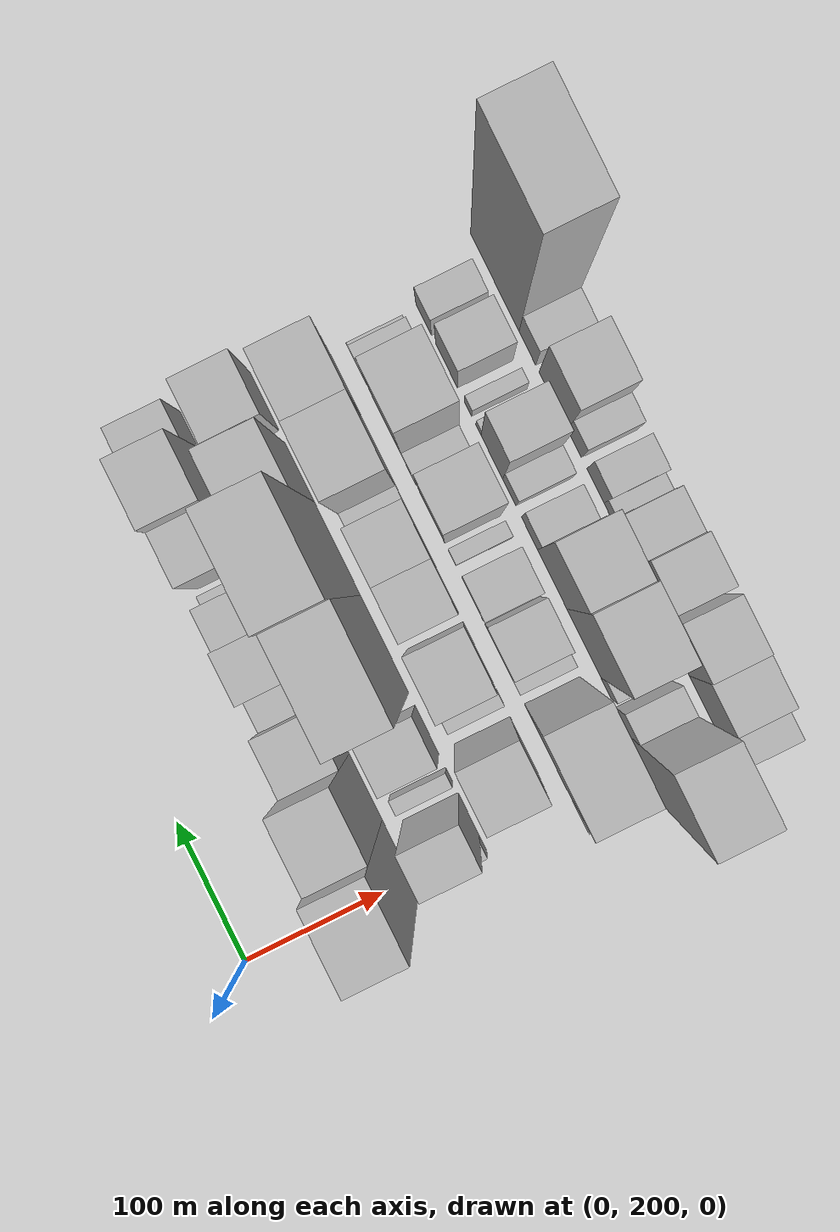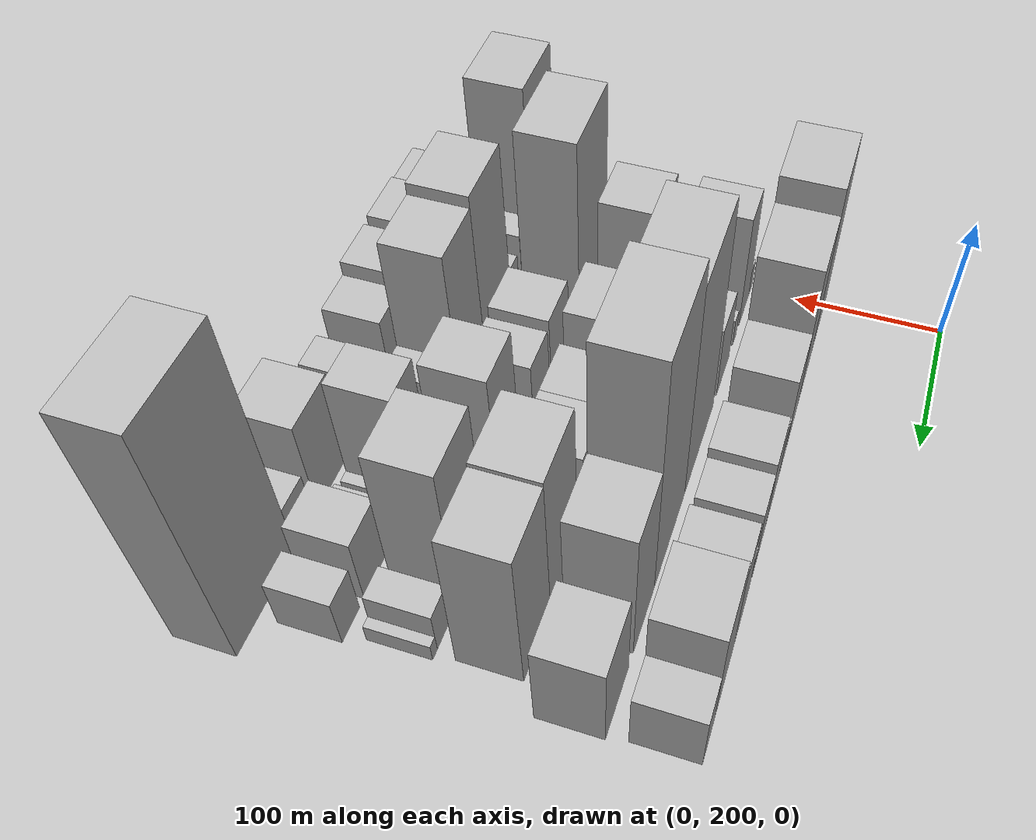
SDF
<sdf version="1.6">
 <world name="default">
  <model name="building_35">
   <static>1</static>
   <pose>100.0000 215.8746 0 0.000000 0.000000 0.000000</pose>
   <link name="link">
    <pose>0 0 72.00 0 0 0</pose>
    <collision name="collision"><geometry><box><size>40.0000 53.1204 144.0000</size></box></geometry></collision>
    <visual name="visual">
     <cast_shadows>0</cast_shadows>
     <geometry><box><size>40.0000 53.1204 144.0000</size></box></geometry>
     <material>
      <script>
       <uri>model://HANNAS_wall/materials/scripts</uri>
       <uri>model://HANNAS_wall/materials/textures</uri>
       <name>vrc/HANNAS_wall</name>
      </script>
     </material>
    </visual>
   </link>
  </model>
  <model name="building_36">
   <static>1</static>
   <pose>100.0000 266.4182 0 0.000000 0.000000 0.000000</pose>
   <link name="link">
    <pose>0 0 61.50 0 0 0</pose>
    <collision name="collision"><geometry><box><size>40.0000 47.9667 123.0000</size></box></geometry></collision>
    <visual name="visual">
     <cast_shadows>0</cast_shadows>
     <geometry><box><size>40.0000 47.9667 123.0000</size></box></geometry>
     <material>
      <script>
       <uri>model://HANNAS_wall/materials/scripts</uri>
       <uri>model://HANNAS_wall/materials/textures</uri>
       <name>vrc/HANNAS_wall</name>
      </script>
     </material>
    </visual>
   </link>
  </model>
  <model name="building_37">
   <static>1</static>
   <pose>100.0000 310.0759 0 0.000000 0.000000 0.000000</pose>
   <link name="link">
    <pose>0 0 34.50 0 0 0</pose>
    <collision name="collision"><geometry><box><size>40.0000 39.3489 69.0000</size></box></geometry></collision>
    <visual name="visual">
     <cast_shadows>0</cast_shadows>
     <geometry><box><size>40.0000 39.3489 69.0000</size></box></geometry>
     <material>
      <script>
       <uri>model://HANNAS_wall/materials/scripts</uri>
       <uri>model://HANNAS_wall/materials/textures</uri>
       <name>vrc/HANNAS_wall</name>
      </script>
     </material>
    </visual>
   </link>
  </model>
  <model name="building_38">
   <static>1</static>
   <pose>100.0000 340.4002 0 0.000000 0.000000 0.000000</pose>
   <link name="link">
    <pose>0 0 18.00 0 0 0</pose>
    <collision name="collision"><geometry><box><size>40.0000 21.2996 36.0000</size></box></geometry></collision>
    <visual name="visual">
     <cast_shadows>0</cast_shadows>
     <geometry><box><size>40.0000 21.2996 36.0000</size></box></geometry>
     <material>
      <script>
       <uri>model://HANNAS_wall/materials/scripts</uri>
       <uri>model://HANNAS_wall/materials/textures</uri>
       <name>vrc/HANNAS_wall</name>
      </script>
     </material>
    </visual>
   </link>
  </model>
  <model name="building_39">
   <static>1</static>
   <pose>100.0000 368.7714 0 0.000000 0.000000 0.000000</pose>
   <link name="link">
    <pose>0 0 31.50 0 0 0</pose>
    <collision name="collision"><geometry><box><size>40.0000 35.4428 63.0000</size></box></geometry></collision>
    <visual name="visual">
     <cast_shadows>0</cast_shadows>
     <geometry><box><size>40.0000 35.4428 63.0000</size></box></geometry>
     <material>
      <script>
       <uri>model://HANNAS_wall/materials/scripts</uri>
       <uri>model://HANNAS_wall/materials/textures</uri>
       <name>vrc/HANNAS_wall</name>
      </script>
     </material>
    </visual>
   </link>
  </model>
  <model name="building_40">
   <static>1</static>
   <pose>100.0000 400.8634 0 0.000000 0.000000 0.000000</pose>
   <link name="link">
    <pose>0 0 27.00 0 0 0</pose>
    <collision name="collision"><geometry><box><size>40.0000 28.7413 54.0000</size></box></geometry></collision>
    <visual name="visual">
     <cast_shadows>0</cast_shadows>
     <geometry><box><size>40.0000 28.7413 54.0000</size></box></geometry>
     <material>
      <script>
       <uri>model://HANNAS_wall/materials/scripts</uri>
       <uri>model://HANNAS_wall/materials/textures</uri>
       <name>vrc/HANNAS_wall</name>
      </script>
     </material>
    </visual>
   </link>
  </model>
  <model name="building_41">
   <static>1</static>
   <pose>100.0000 419.4619 0 0.000000 0.000000 0.000000</pose>
   <link name="link">
    <pose>0 0 10.50 0 0 0</pose>
    <collision name="collision"><geometry><box><size>40.0000 8.4557 21.0000</size></box></geometry></collision>
    <visual name="visual">
     <cast_shadows>0</cast_shadows>
     <geometry><box><size>40.0000 8.4557 21.0000</size></box></geometry>
     <material>
      <script>
       <uri>model://HANNAS_wall/materials/scripts</uri>
       <uri>model://HANNAS_wall/materials/textures</uri>
       <name>vrc/HANNAS_wall</name>
      </script>
     </material>
    </visual>
   </link>
  </model>
  <model name="building_42">
   <static>1</static>
   <pose>100.0000 448.1428 0 0.000000 0.000000 0.000000</pose>
   <link name="link">
    <pose>0 0 34.50 0 0 0</pose>
    <collision name="collision"><geometry><box><size>40.0000 36.9061 69.0000</size></box></geometry></collision>
    <visual name="visual">
     <cast_shadows>0</cast_shadows>
     <geometry><box><size>40.0000 36.9061 69.0000</size></box></geometry>
     <material>
      <script>
       <uri>model://HANNAS_wall/materials/scripts</uri>
       <uri>model://HANNAS_wall/materials/textures</uri>
       <name>vrc/HANNAS_wall</name>
      </script>
     </material>
    </visual>
   </link>
  </model>
  <model name="building_43">
   <static>1</static>
   <pose>100.0000 489.4300 0 0.000000 0.000000 0.000000</pose>
   <link name="link">
    <pose>0 0 45.00 0 0 0</pose>
    <collision name="collision"><geometry><box><size>40.0000 45.6684 90.0000</size></box></geometry></collision>
    <visual name="visual">
     <cast_shadows>0</cast_shadows>
     <geometry><box><size>40.0000 45.6684 90.0000</size></box></geometry>
     <material>
      <script>
       <uri>model://HANNAS_wall/materials/scripts</uri>
       <uri>model://HANNAS_wall/materials/textures</uri>
       <name>vrc/HANNAS_wall</name>
      </script>
     </material>
    </visual>
   </link>
  </model>
  <model name="building_44">
   <static>1</static>
   <pose>100.0000 525.2028 0 0.000000 0.000000 0.000000</pose>
   <link name="link">
    <pose>0 0 25.50 0 0 0</pose>
    <collision name="collision"><geometry><box><size>40.0000 25.8772 51.0000</size></box></geometry></collision>
    <visual name="visual">
     <cast_shadows>0</cast_shadows>
     <geometry><box><size>40.0000 25.8772 51.0000</size></box></geometry>
     <material>
      <script>
       <uri>model://HANNAS_wall/materials/scripts</uri>
       <uri>model://HANNAS_wall/materials/textures</uri>
       <name>vrc/HANNAS_wall</name>
      </script>
     </material>
    </visual>
   </link>
  </model>
  <model name="building_84">
   <static>1</static>
   <pose>152.0000 200.3328 0 0.000000 0.000000 0.000000</pose>
   <link name="link">
    <pose>0 0 12.00 0 0 0</pose>
    <collision name="collision"><geometry><box><size>40.0000 11.3725 24.0000</size></box></geometry></collision>
    <visual name="visual">
     <cast_shadows>0</cast_shadows>
     <geometry><box><size>40.0000 11.3725 24.0000</size></box></geometry>
     <material>
      <script>
       <uri>model://HANNAS_wall/materials/scripts</uri>
       <uri>model://HANNAS_wall/materials/textures</uri>
       <name>vrc/HANNAS_wall</name>
      </script>
     </material>
    </visual>
   </link>
  </model>
  <model name="building_85">
   <static>1</static>
   <pose>152.0000 221.2014 0 0.000000 0.000000 0.000000</pose>
   <link name="link">
    <pose>0 0 49.50 0 0 0</pose>
    <collision name="collision"><geometry><box><size>40.0000 30.3646 99.0000</size></box></geometry></collision>
    <visual name="visual">
     <cast_shadows>0</cast_shadows>
     <geometry><box><size>40.0000 30.3646 99.0000</size></box></geometry>
     <material>
      <script>
       <uri>model://HANNAS_wall/materials/scripts</uri>
       <uri>model://HANNAS_wall/materials/textures</uri>
       <name>vrc/HANNAS_wall</name>
      </script>
     </material>
    </visual>
   </link>
  </model>
  <model name="building_86">
   <static>1</static>
   <pose>152.0000 249.5846 0 0.000000 0.000000 0.000000</pose>
   <link name="link">
    <pose>0 0 12.00 0 0 0</pose>
    <collision name="collision"><geometry><box><size>40.0000 10.4019 24.0000</size></box></geometry></collision>
    <visual name="visual">
     <cast_shadows>0</cast_shadows>
     <geometry><box><size>40.0000 10.4019 24.0000</size></box></geometry>
     <material>
      <script>
       <uri>model://HANNAS_wall/materials/scripts</uri>
       <uri>model://HANNAS_wall/materials/textures</uri>
       <name>vrc/HANNAS_wall</name>
      </script>
     </material>
    </visual>
   </link>
  </model>
  <model name="building_87">
   <static>1</static>
   <pose>152.0000 282.2176 0 0.000000 0.000000 0.000000</pose>
   <link name="link">
    <pose>0 0 31.50 0 0 0</pose>
    <collision name="collision"><geometry><box><size>40.0000 34.8639 63.0000</size></box></geometry></collision>
    <visual name="visual">
     <cast_shadows>0</cast_shadows>
     <geometry><box><size>40.0000 34.8639 63.0000</size></box></geometry>
     <material>
      <script>
       <uri>model://HANNAS_wall/materials/scripts</uri>
       <uri>model://HANNAS_wall/materials/textures</uri>
       <name>vrc/HANNAS_wall</name>
      </script>
     </material>
    </visual>
   </link>
  </model>
  <model name="building_88">
   <static>1</static>
   <pose>152.0000 344.0194 0 0.000000 0.000000 0.000000</pose>
   <link name="link">
    <pose>0 0 91.50 0 0 0</pose>
    <collision name="collision"><geometry><box><size>40.0000 70.7397 183.0000</size></box></geometry></collision>
    <visual name="visual">
     <cast_shadows>0</cast_shadows>
     <geometry><box><size>40.0000 70.7397 183.0000</size></box></geometry>
     <material>
      <script>
       <uri>model://HANNAS_wall/materials/scripts</uri>
       <uri>model://HANNAS_wall/materials/textures</uri>
       <name>vrc/HANNAS_wall</name>
      </script>
     </material>
    </visual>
   </link>
  </model>
  <model name="building_89">
   <static>1</static>
   <pose>152.0000 413.1528 0 0.000000 0.000000 0.000000</pose>
   <link name="link">
    <pose>0 0 102.00 0 0 0</pose>
    <collision name="collision"><geometry><box><size>40.0000 67.5271 204.0000</size></box></geometry></collision>
    <visual name="visual">
     <cast_shadows>0</cast_shadows>
     <geometry><box><size>40.0000 67.5271 204.0000</size></box></geometry>
     <material>
      <script>
       <uri>model://HANNAS_wall/materials/scripts</uri>
       <uri>model://HANNAS_wall/materials/textures</uri>
       <name>vrc/HANNAS_wall</name>
      </script>
     </material>
    </visual>
   </link>
  </model>
  <model name="building_90">
   <static>1</static>
   <pose>152.0000 468.1291 0 0.000000 0.000000 0.000000</pose>
   <link name="link">
    <pose>0 0 58.50 0 0 0</pose>
    <collision name="collision"><geometry><box><size>40.0000 42.4255 117.0000</size></box></geometry></collision>
    <visual name="visual">
     <cast_shadows>0</cast_shadows>
     <geometry><box><size>40.0000 42.4255 117.0000</size></box></geometry>
     <material>
      <script>
       <uri>model://HANNAS_wall/materials/scripts</uri>
       <uri>model://HANNAS_wall/materials/textures</uri>
       <name>vrc/HANNAS_wall</name>
      </script>
     </material>
    </visual>
   </link>
  </model>
  <model name="building_91">
   <static>1</static>
   <pose>152.0000 519.6107 0 0.000000 0.000000 0.000000</pose>
   <link name="link">
    <pose>0 0 37.50 0 0 0</pose>
    <collision name="collision"><geometry><box><size>40.0000 42.5377 75.0000</size></box></geometry></collision>
    <visual name="visual">
     <cast_shadows>0</cast_shadows>
     <geometry><box><size>40.0000 42.5377 75.0000</size></box></geometry>
     <material>
      <script>
       <uri>model://HANNAS_wall/materials/scripts</uri>
       <uri>model://HANNAS_wall/materials/textures</uri>
       <name>vrc/HANNAS_wall</name>
      </script>
     </material>
    </visual>
   </link>
  </model>
  <model name="building_131">
   <static>1</static>
   <pose>204.0000 245.7293 0 0.000000 0.000000 0.000000</pose>
   <link name="link">
    <pose>0 0 57.00 0 0 0</pose>
    <collision name="collision"><geometry><box><size>40.0000 40.1616 114.0000</size></box></geometry></collision>
    <visual name="visual">
     <cast_shadows>0</cast_shadows>
     <geometry><box><size>40.0000 40.1616 114.0000</size></box></geometry>
     <material>
      <script>
       <uri>model://HANNAS_wall/materials/scripts</uri>
       <uri>model://HANNAS_wall/materials/textures</uri>
       <name>vrc/HANNAS_wall</name>
      </script>
     </material>
    </visual>
   </link>
  </model>
  <model name="building_132">
   <static>1</static>
   <pose>204.0000 280.7486 0 0.000000 0.000000 0.000000</pose>
   <link name="link">
    <pose>0 0 12.00 0 0 0</pose>
    <collision name="collision"><geometry><box><size>40.0000 9.8770 24.0000</size></box></geometry></collision>
    <visual name="visual">
     <cast_shadows>0</cast_shadows>
     <geometry><box><size>40.0000 9.8770 24.0000</size></box></geometry>
     <material>
      <script>
       <uri>model://HANNAS_wall/materials/scripts</uri>
       <uri>model://HANNAS_wall/materials/textures</uri>
       <name>vrc/HANNAS_wall</name>
      </script>
     </material>
    </visual>
   </link>
  </model>
  <model name="building_133">
   <static>1</static>
   <pose>204.0000 312.5764 0 0.000000 0.000000 0.000000</pose>
   <link name="link">
    <pose>0 0 43.50 0 0 0</pose>
    <collision name="collision"><geometry><box><size>40.0000 43.7785 87.0000</size></box></geometry></collision>
    <visual name="visual">
     <cast_shadows>0</cast_shadows>
     <geometry><box><size>40.0000 43.7785 87.0000</size></box></geometry>
     <material>
      <script>
       <uri>model://HANNAS_wall/materials/scripts</uri>
       <uri>model://HANNAS_wall/materials/textures</uri>
       <name>vrc/HANNAS_wall</name>
      </script>
     </material>
    </visual>
   </link>
  </model>
  <model name="building_134">
   <static>1</static>
   <pose>204.0000 360.0409 0 0.000000 0.000000 0.000000</pose>
   <link name="link">
    <pose>0 0 33.00 0 0 0</pose>
    <collision name="collision"><geometry><box><size>40.0000 37.1506 66.0000</size></box></geometry></collision>
    <visual name="visual">
     <cast_shadows>0</cast_shadows>
     <geometry><box><size>40.0000 37.1506 66.0000</size></box></geometry>
     <material>
      <script>
       <uri>model://HANNAS_wall/materials/scripts</uri>
       <uri>model://HANNAS_wall/materials/textures</uri>
       <name>vrc/HANNAS_wall</name>
      </script>
     </material>
    </visual>
   </link>
  </model>
  <model name="building_135">
   <static>1</static>
   <pose>204.0000 398.3648 0 0.000000 0.000000 0.000000</pose>
   <link name="link">
    <pose>0 0 33.00 0 0 0</pose>
    <collision name="collision"><geometry><box><size>40.0000 39.4972 66.0000</size></box></geometry></collision>
    <visual name="visual">
     <cast_shadows>0</cast_shadows>
     <geometry><box><size>40.0000 39.4972 66.0000</size></box></geometry>
     <material>
      <script>
       <uri>model://HANNAS_wall/materials/scripts</uri>
       <uri>model://HANNAS_wall/materials/textures</uri>
       <name>vrc/HANNAS_wall</name>
      </script>
     </material>
    </visual>
   </link>
  </model>
  <model name="building_136">
   <static>1</static>
   <pose>204.0000 424.2747 0 0.000000 0.000000 0.000000</pose>
   <link name="link">
    <pose>0 0 13.50 0 0 0</pose>
    <collision name="collision"><geometry><box><size>40.0000 12.3226 27.0000</size></box></geometry></collision>
    <visual name="visual">
     <cast_shadows>0</cast_shadows>
     <geometry><box><size>40.0000 12.3226 27.0000</size></box></geometry>
     <material>
      <script>
       <uri>model://HANNAS_wall/materials/scripts</uri>
       <uri>model://HANNAS_wall/materials/textures</uri>
       <name>vrc/HANNAS_wall</name>
      </script>
     </material>
    </visual>
   </link>
  </model>
  <model name="building_137">
   <static>1</static>
   <pose>204.0000 454.5413 0 0.000000 0.000000 0.000000</pose>
   <link name="link">
    <pose>0 0 64.50 0 0 0</pose>
    <collision name="collision"><geometry><box><size>40.0000 48.2107 129.0000</size></box></geometry></collision>
    <visual name="visual">
     <cast_shadows>0</cast_shadows>
     <geometry><box><size>40.0000 48.2107 129.0000</size></box></geometry>
     <material>
      <script>
       <uri>model://HANNAS_wall/materials/scripts</uri>
       <uri>model://HANNAS_wall/materials/textures</uri>
       <name>vrc/HANNAS_wall</name>
      </script>
     </material>
    </visual>
   </link>
  </model>
  <model name="building_138">
   <static>1</static>
   <pose>204.0000 500.9767 0 0.000000 0.000000 0.000000</pose>
   <link name="link">
    <pose>0 0 63.00 0 0 0</pose>
    <collision name="collision"><geometry><box><size>40.0000 44.6600 126.0000</size></box></geometry></collision>
    <visual name="visual">
     <cast_shadows>0</cast_shadows>
     <geometry><box><size>40.0000 44.6600 126.0000</size></box></geometry>
     <material>
      <script>
       <uri>model://HANNAS_wall/materials/scripts</uri>
       <uri>model://HANNAS_wall/materials/textures</uri>
       <name>vrc/HANNAS_wall</name>
      </script>
     </material>
    </visual>
   </link>
  </model>
  <model name="building_180">
   <static>1</static>
   <pose>256.0000 190.8517 0 0.000000 0.000000 0.000000</pose>
   <link name="link">
    <pose>0 0 16.50 0 0 0</pose>
    <collision name="collision"><geometry><box><size>40.0000 16.6006 33.0000</size></box></geometry></collision>
    <visual name="visual">
     <cast_shadows>0</cast_shadows>
     <geometry><box><size>40.0000 16.6006 33.0000</size></box></geometry>
     <material>
      <script>
       <uri>model://HANNAS_wall/materials/scripts</uri>
       <uri>model://HANNAS_wall/materials/textures</uri>
       <name>vrc/HANNAS_wall</name>
      </script>
     </material>
    </visual>
   </link>
  </model>
  <model name="building_181">
   <static>1</static>
   <pose>256.0000 238.5435 0 0.000000 0.000000 0.000000</pose>
   <link name="link">
    <pose>0 0 79.50 0 0 0</pose>
    <collision name="collision"><geometry><box><size>40.0000 60.7830 159.0000</size></box></geometry></collision>
    <visual name="visual">
     <cast_shadows>0</cast_shadows>
     <geometry><box><size>40.0000 60.7830 159.0000</size></box></geometry>
     <material>
      <script>
       <uri>model://HANNAS_wall/materials/scripts</uri>
       <uri>model://HANNAS_wall/materials/textures</uri>
       <name>vrc/HANNAS_wall</name>
      </script>
     </material>
    </visual>
   </link>
  </model>
  <model name="building_182">
   <static>1</static>
   <pose>256.0000 284.3451 0 0.000000 0.000000 0.000000</pose>
   <link name="link">
    <pose>0 0 13.50 0 0 0</pose>
    <collision name="collision"><geometry><box><size>40.0000 12.8201 27.0000</size></box></geometry></collision>
    <visual name="visual">
     <cast_shadows>0</cast_shadows>
     <geometry><box><size>40.0000 12.8201 27.0000</size></box></geometry>
     <material>
      <script>
       <uri>model://HANNAS_wall/materials/scripts</uri>
       <uri>model://HANNAS_wall/materials/textures</uri>
       <name>vrc/HANNAS_wall</name>
      </script>
     </material>
    </visual>
   </link>
  </model>
  <model name="building_183">
   <static>1</static>
   <pose>256.0000 308.8510 0 0.000000 0.000000 0.000000</pose>
   <link name="link">
    <pose>0 0 33.00 0 0 0</pose>
    <collision name="collision"><geometry><box><size>40.0000 36.1917 66.0000</size></box></geometry></collision>
    <visual name="visual">
     <cast_shadows>0</cast_shadows>
     <geometry><box><size>40.0000 36.1917 66.0000</size></box></geometry>
     <material>
      <script>
       <uri>model://HANNAS_wall/materials/scripts</uri>
       <uri>model://HANNAS_wall/materials/textures</uri>
       <name>vrc/HANNAS_wall</name>
      </script>
     </material>
    </visual>
   </link>
  </model>
  <model name="building_184">
   <static>1</static>
   <pose>256.0000 345.4467 0 0.000000 0.000000 0.000000</pose>
   <link name="link">
    <pose>0 0 30.00 0 0 0</pose>
    <collision name="collision"><geometry><box><size>40.0000 30.9998 60.0000</size></box></geometry></collision>
    <visual name="visual">
     <cast_shadows>0</cast_shadows>
     <geometry><box><size>40.0000 30.9998 60.0000</size></box></geometry>
     <material>
      <script>
       <uri>model://HANNAS_wall/materials/scripts</uri>
       <uri>model://HANNAS_wall/materials/textures</uri>
       <name>vrc/HANNAS_wall</name>
      </script>
     </material>
    </visual>
   </link>
  </model>
  <model name="building_185">
   <static>1</static>
   <pose>256.0000 374.5976 0 0.000000 0.000000 0.000000</pose>
   <link name="link">
    <pose>0 0 13.50 0 0 0</pose>
    <collision name="collision"><geometry><box><size>40.0000 11.3020 27.0000</size></box></geometry></collision>
    <visual name="visual">
     <cast_shadows>0</cast_shadows>
     <geometry><box><size>40.0000 11.3020 27.0000</size></box></geometry>
     <material>
      <script>
       <uri>model://HANNAS_wall/materials/scripts</uri>
       <uri>model://HANNAS_wall/materials/textures</uri>
       <name>vrc/HANNAS_wall</name>
      </script>
     </material>
    </visual>
   </link>
  </model>
  <model name="building_186">
   <static>1</static>
   <pose>256.0000 403.7423 0 0.000000 0.000000 0.000000</pose>
   <link name="link">
    <pose>0 0 60.00 0 0 0</pose>
    <collision name="collision"><geometry><box><size>40.0000 36.9873 120.0000</size></box></geometry></collision>
    <visual name="visual">
     <cast_shadows>0</cast_shadows>
     <geometry><box><size>40.0000 36.9873 120.0000</size></box></geometry>
     <material>
      <script>
       <uri>model://HANNAS_wall/materials/scripts</uri>
       <uri>model://HANNAS_wall/materials/textures</uri>
       <name>vrc/HANNAS_wall</name>
      </script>
     </material>
    </visual>
   </link>
  </model>
  <model name="building_187">
   <static>1</static>
   <pose>256.0000 436.4875 0 0.000000 0.000000 0.000000</pose>
   <link name="link">
    <pose>0 0 18.00 0 0 0</pose>
    <collision name="collision"><geometry><box><size>40.0000 18.5031 36.0000</size></box></geometry></collision>
    <visual name="visual">
     <cast_shadows>0</cast_shadows>
     <geometry><box><size>40.0000 18.5031 36.0000</size></box></geometry>
     <material>
      <script>
       <uri>model://HANNAS_wall/materials/scripts</uri>
       <uri>model://HANNAS_wall/materials/textures</uri>
       <name>vrc/HANNAS_wall</name>
      </script>
     </material>
    </visual>
   </link>
  </model>
  <model name="building_188">
   <static>1</static>
   <pose>256.0000 468.6900 0 0.000000 0.000000 0.000000</pose>
   <link name="link">
    <pose>0 0 64.50 0 0 0</pose>
    <collision name="collision"><geometry><box><size>40.0000 45.9019 129.0000</size></box></geometry></collision>
    <visual name="visual">
     <cast_shadows>0</cast_shadows>
     <geometry><box><size>40.0000 45.9019 129.0000</size></box></geometry>
     <material>
      <script>
       <uri>model://HANNAS_wall/materials/scripts</uri>
       <uri>model://HANNAS_wall/materials/textures</uri>
       <name>vrc/HANNAS_wall</name>
      </script>
     </material>
    </visual>
   </link>
  </model>
  <model name="building_189">
   <static>1</static>
   <pose>256.0000 509.9498 0 0.000000 0.000000 0.000000</pose>
   <link name="link">
    <pose>0 0 18.00 0 0 0</pose>
    <collision name="collision"><geometry><box><size>40.0000 20.6177 36.0000</size></box></geometry></collision>
    <visual name="visual">
     <cast_shadows>0</cast_shadows>
     <geometry><box><size>40.0000 20.6177 36.0000</size></box></geometry>
     <material>
      <script>
       <uri>model://HANNAS_wall/materials/scripts</uri>
       <uri>model://HANNAS_wall/materials/textures</uri>
       <name>vrc/HANNAS_wall</name>
      </script>
     </material>
    </visual>
   </link>
  </model>
  <model name="building_190">
   <static>1</static>
   <pose>256.0000 523.6089 0 0.000000 0.000000 0.000000</pose>
   <link name="link">
    <pose>0 0 7.50 0 0 0</pose>
    <collision name="collision"><geometry><box><size>40.0000 6.7005 15.0000</size></box></geometry></collision>
    <visual name="visual">
     <cast_shadows>0</cast_shadows>
     <geometry><box><size>40.0000 6.7005 15.0000</size></box></geometry>
     <material>
      <script>
       <uri>model://HANNAS_wall/materials/scripts</uri>
       <uri>model://HANNAS_wall/materials/textures</uri>
       <name>vrc/HANNAS_wall</name>
      </script>
     </material>
    </visual>
   </link>
  </model>
  <model name="building_230">
   <static>1</static>
   <pose>308.0000 193.7783 0 0.000000 0.000000 0.000000</pose>
   <link name="link">
    <pose>0 0 75.00 0 0 0</pose>
    <collision name="collision"><geometry><box><size>40.0000 51.5540 150.0000</size></box></geometry></collision>
    <visual name="visual">
     <cast_shadows>0</cast_shadows>
     <geometry><box><size>40.0000 51.5540 150.0000</size></box></geometry>
     <material>
      <script>
       <uri>model://HANNAS_wall/materials/scripts</uri>
       <uri>model://HANNAS_wall/materials/textures</uri>
       <name>vrc/HANNAS_wall</name>
      </script>
     </material>
    </visual>
   </link>
  </model>
  <model name="building_231">
   <static>1</static>
   <pose>308.0000 230.1332 0 0.000000 0.000000 0.000000</pose>
   <link name="link">
    <pose>0 0 21.00 0 0 0</pose>
    <collision name="collision"><geometry><box><size>40.0000 21.1558 42.0000</size></box></geometry></collision>
    <visual name="visual">
     <cast_shadows>0</cast_shadows>
     <geometry><box><size>40.0000 21.1558 42.0000</size></box></geometry>
     <material>
      <script>
       <uri>model://HANNAS_wall/materials/scripts</uri>
       <uri>model://HANNAS_wall/materials/textures</uri>
       <name>vrc/HANNAS_wall</name>
      </script>
     </material>
    </visual>
   </link>
  </model>
  <model name="building_232">
   <static>1</static>
   <pose>308.0000 254.5434 0 0.000000 0.000000 0.000000</pose>
   <link name="link">
    <pose>0 0 15.00 0 0 0</pose>
    <collision name="collision"><geometry><box><size>40.0000 15.6646 30.0000</size></box></geometry></collision>
    <visual name="visual">
     <cast_shadows>0</cast_shadows>
     <geometry><box><size>40.0000 15.6646 30.0000</size></box></geometry>
     <material>
      <script>
       <uri>model://HANNAS_wall/materials/scripts</uri>
       <uri>model://HANNAS_wall/materials/textures</uri>
       <name>vrc/HANNAS_wall</name>
      </script>
     </material>
    </visual>
   </link>
  </model>
  <model name="building_233">
   <static>1</static>
   <pose>308.0000 287.2489 0 0.000000 0.000000 0.000000</pose>
   <link name="link">
    <pose>0 0 70.50 0 0 0</pose>
    <collision name="collision"><geometry><box><size>40.0000 49.7463 141.0000</size></box></geometry></collision>
    <visual name="visual">
     <cast_shadows>0</cast_shadows>
     <geometry><box><size>40.0000 49.7463 141.0000</size></box></geometry>
     <material>
      <script>
       <uri>model://HANNAS_wall/materials/scripts</uri>
       <uri>model://HANNAS_wall/materials/textures</uri>
       <name>vrc/HANNAS_wall</name>
      </script>
     </material>
    </visual>
   </link>
  </model>
  <model name="building_234">
   <static>1</static>
   <pose>308.0000 333.5322 0 0.000000 0.000000 0.000000</pose>
   <link name="link">
    <pose>0 0 66.00 0 0 0</pose>
    <collision name="collision"><geometry><box><size>40.0000 42.8203 132.0000</size></box></geometry></collision>
    <visual name="visual">
     <cast_shadows>0</cast_shadows>
     <geometry><box><size>40.0000 42.8203 132.0000</size></box></geometry>
     <material>
      <script>
       <uri>model://HANNAS_wall/materials/scripts</uri>
       <uri>model://HANNAS_wall/materials/textures</uri>
       <name>vrc/HANNAS_wall</name>
      </script>
     </material>
    </visual>
   </link>
  </model>
  <model name="building_235">
   <static>1</static>
   <pose>308.0000 366.7705 0 0.000000 0.000000 0.000000</pose>
   <link name="link">
    <pose>0 0 21.00 0 0 0</pose>
    <collision name="collision"><geometry><box><size>40.0000 23.6564 42.0000</size></box></geometry></collision>
    <visual name="visual">
     <cast_shadows>0</cast_shadows>
     <geometry><box><size>40.0000 23.6564 42.0000</size></box></geometry>
     <material>
      <script>
       <uri>model://HANNAS_wall/materials/scripts</uri>
       <uri>model://HANNAS_wall/materials/textures</uri>
       <name>vrc/HANNAS_wall</name>
      </script>
     </material>
    </visual>
   </link>
  </model>
  <model name="building_236">
   <static>1</static>
   <pose>308.0000 396.2868 0 0.000000 0.000000 0.000000</pose>
   <link name="link">
    <pose>0 0 18.00 0 0 0</pose>
    <collision name="collision"><geometry><box><size>40.0000 19.3762 36.0000</size></box></geometry></collision>
    <visual name="visual">
     <cast_shadows>0</cast_shadows>
     <geometry><box><size>40.0000 19.3762 36.0000</size></box></geometry>
     <material>
      <script>
       <uri>model://HANNAS_wall/materials/scripts</uri>
       <uri>model://HANNAS_wall/materials/textures</uri>
       <name>vrc/HANNAS_wall</name>
      </script>
     </material>
    </visual>
   </link>
  </model>
  <model name="building_237">
   <static>1</static>
   <pose>308.0000 421.7386 0 0.000000 0.000000 0.000000</pose>
   <link name="link">
    <pose>0 0 51.00 0 0 0</pose>
    <collision name="collision"><geometry><box><size>40.0000 31.5276 102.0000</size></box></geometry></collision>
    <visual name="visual">
     <cast_shadows>0</cast_shadows>
     <geometry><box><size>40.0000 31.5276 102.0000</size></box></geometry>
     <material>
      <script>
       <uri>model://HANNAS_wall/materials/scripts</uri>
       <uri>model://HANNAS_wall/materials/textures</uri>
       <name>vrc/HANNAS_wall</name>
      </script>
     </material>
    </visual>
   </link>
  </model>
  <model name="building_238">
   <static>1</static>
   <pose>308.0000 441.4355 0 0.000000 0.000000 0.000000</pose>
   <link name="link">
    <pose>0 0 9.00 0 0 0</pose>
    <collision name="collision"><geometry><box><size>40.0000 7.8661 18.0000</size></box></geometry></collision>
    <visual name="visual">
     <cast_shadows>0</cast_shadows>
     <geometry><box><size>40.0000 7.8661 18.0000</size></box></geometry>
     <material>
      <script>
       <uri>model://HANNAS_wall/materials/scripts</uri>
       <uri>model://HANNAS_wall/materials/textures</uri>
       <name>vrc/HANNAS_wall</name>
      </script>
     </material>
    </visual>
   </link>
  </model>
  <model name="building_239">
   <static>1</static>
   <pose>308.0000 456.6762 0 0.000000 0.000000 0.000000</pose>
   <link name="link">
    <pose>0 0 12.00 0 0 0</pose>
    <collision name="collision"><geometry><box><size>40.0000 10.6152 24.0000</size></box></geometry></collision>
    <visual name="visual">
     <cast_shadows>0</cast_shadows>
     <geometry><box><size>40.0000 10.6152 24.0000</size></box></geometry>
     <material>
      <script>
       <uri>model://HANNAS_wall/materials/scripts</uri>
       <uri>model://HANNAS_wall/materials/textures</uri>
       <name>vrc/HANNAS_wall</name>
      </script>
     </material>
    </visual>
   </link>
  </model>
  <model name="building_240">
   <static>1</static>
   <pose>308.0000 488.0131 0 0.000000 0.000000 0.000000</pose>
   <link name="link">
    <pose>0 0 28.50 0 0 0</pose>
    <collision name="collision"><geometry><box><size>40.0000 32.0588 57.0000</size></box></geometry></collision>
    <visual name="visual">
     <cast_shadows>0</cast_shadows>
     <geometry><box><size>40.0000 32.0588 57.0000</size></box></geometry>
     <material>
      <script>
       <uri>model://HANNAS_wall/materials/scripts</uri>
       <uri>model://HANNAS_wall/materials/textures</uri>
       <name>vrc/HANNAS_wall</name>
      </script>
     </material>
    </visual>
   </link>
  </model>
  <model name="building_241">
   <static>1</static>
   <pose>308.0000 521.3915 0 0.000000 0.000000 0.000000</pose>
   <link name="link">
    <pose>0 0 21.00 0 0 0</pose>
    <collision name="collision"><geometry><box><size>40.0000 22.6979 42.0000</size></box></geometry></collision>
    <visual name="visual">
     <cast_shadows>0</cast_shadows>
     <geometry><box><size>40.0000 22.6979 42.0000</size></box></geometry>
     <material>
      <script>
       <uri>model://HANNAS_wall/materials/scripts</uri>
       <uri>model://HANNAS_wall/materials/textures</uri>
       <name>vrc/HANNAS_wall</name>
      </script>
     </material>
    </visual>
   </link>
  </model>
  <model name="building_281">
   <static>1</static>
   <pose>360.0000 190.0394 0 0.000000 0.000000 0.000000</pose>
   <link name="link">
    <pose>0 0 21.00 0 0 0</pose>
    <collision name="collision"><geometry><box><size>40.0000 24.7342 42.0000</size></box></geometry></collision>
    <visual name="visual">
     <cast_shadows>0</cast_shadows>
     <geometry><box><size>40.0000 24.7342 42.0000</size></box></geometry>
     <material>
      <script>
       <uri>model://HANNAS_wall/materials/scripts</uri>
       <uri>model://HANNAS_wall/materials/textures</uri>
       <name>vrc/HANNAS_wall</name>
      </script>
     </material>
    </visual>
   </link>
  </model>
  <model name="building_282">
   <static>1</static>
   <pose>360.0000 220.1932 0 0.000000 0.000000 0.000000</pose>
   <link name="link">
    <pose>0 0 33.00 0 0 0</pose>
    <collision name="collision"><geometry><box><size>40.0000 35.5736 66.0000</size></box></geometry></collision>
    <visual name="visual">
     <cast_shadows>0</cast_shadows>
     <geometry><box><size>40.0000 35.5736 66.0000</size></box></geometry>
     <material>
      <script>
       <uri>model://HANNAS_wall/materials/scripts</uri>
       <uri>model://HANNAS_wall/materials/textures</uri>
       <name>vrc/HANNAS_wall</name>
      </script>
     </material>
    </visual>
   </link>
  </model>
  <model name="building_283">
   <static>1</static>
   <pose>360.0000 257.9940 0 0.000000 0.000000 0.000000</pose>
   <link name="link">
    <pose>0 0 34.50 0 0 0</pose>
    <collision name="collision"><geometry><box><size>40.0000 40.0281 69.0000</size></box></geometry></collision>
    <visual name="visual">
     <cast_shadows>0</cast_shadows>
     <geometry><box><size>40.0000 40.0281 69.0000</size></box></geometry>
     <material>
      <script>
       <uri>model://HANNAS_wall/materials/scripts</uri>
       <uri>model://HANNAS_wall/materials/textures</uri>
       <name>vrc/HANNAS_wall</name>
      </script>
     </material>
    </visual>
   </link>
  </model>
  <model name="building_284">
   <static>1</static>
   <pose>360.0000 301.2499 0 0.000000 0.000000 0.000000</pose>
   <link name="link">
    <pose>0 0 33.00 0 0 0</pose>
    <collision name="collision"><geometry><box><size>40.0000 36.4836 66.0000</size></box></geometry></collision>
    <visual name="visual">
     <cast_shadows>0</cast_shadows>
     <geometry><box><size>40.0000 36.4836 66.0000</size></box></geometry>
     <material>
      <script>
       <uri>model://HANNAS_wall/materials/scripts</uri>
       <uri>model://HANNAS_wall/materials/textures</uri>
       <name>vrc/HANNAS_wall</name>
      </script>
     </material>
    </visual>
   </link>
  </model>
  <model name="building_285">
   <static>1</static>
   <pose>360.0000 335.2160 0 0.000000 0.000000 0.000000</pose>
   <link name="link">
    <pose>0 0 27.00 0 0 0</pose>
    <collision name="collision"><geometry><box><size>40.0000 31.4487 54.0000</size></box></geometry></collision>
    <visual name="visual">
     <cast_shadows>0</cast_shadows>
     <geometry><box><size>40.0000 31.4487 54.0000</size></box></geometry>
     <material>
      <script>
       <uri>model://HANNAS_wall/materials/scripts</uri>
       <uri>model://HANNAS_wall/materials/textures</uri>
       <name>vrc/HANNAS_wall</name>
      </script>
     </material>
    </visual>
   </link>
  </model>
  <model name="building_286">
   <static>1</static>
   <pose>360.0000 356.8955 0 0.000000 0.000000 0.000000</pose>
   <link name="link">
    <pose>0 0 12.00 0 0 0</pose>
    <collision name="collision"><geometry><box><size>40.0000 11.9101 24.0000</size></box></geometry></collision>
    <visual name="visual">
     <cast_shadows>0</cast_shadows>
     <geometry><box><size>40.0000 11.9101 24.0000</size></box></geometry>
     <material>
      <script>
       <uri>model://HANNAS_wall/materials/scripts</uri>
       <uri>model://HANNAS_wall/materials/textures</uri>
       <name>vrc/HANNAS_wall</name>
      </script>
     </material>
    </visual>
   </link>
  </model>
  <model name="building_287">
   <static>1</static>
   <pose>360.0000 375.3744 0 0.000000 0.000000 0.000000</pose>
   <link name="link">
    <pose>0 0 21.00 0 0 0</pose>
    <collision name="collision"><geometry><box><size>40.0000 25.0478 42.0000</size></box></geometry></collision>
    <visual name="visual">
     <cast_shadows>0</cast_shadows>
     <geometry><box><size>40.0000 25.0478 42.0000</size></box></geometry>
     <material>
      <script>
       <uri>model://HANNAS_wall/materials/scripts</uri>
       <uri>model://HANNAS_wall/materials/textures</uri>
       <name>vrc/HANNAS_wall</name>
      </script>
     </material>
    </visual>
   </link>
  </model>
  <model name="building_288">
   <static>1</static>
   <pose>360.0000 406.0769 0 0.000000 0.000000 0.000000</pose>
   <link name="link">
    <pose>0 0 19.50 0 0 0</pose>
    <collision name="collision"><geometry><box><size>40.0000 20.3572 39.0000</size></box></geometry></collision>
    <visual name="visual">
     <cast_shadows>0</cast_shadows>
     <geometry><box><size>40.0000 20.3572 39.0000</size></box></geometry>
     <material>
      <script>
       <uri>model://HANNAS_wall/materials/scripts</uri>
       <uri>model://HANNAS_wall/materials/textures</uri>
       <name>vrc/HANNAS_wall</name>
      </script>
     </material>
    </visual>
   </link>
  </model>
  <model name="building_289">
   <static>1</static>
   <pose>360.0000 437.0400 0 0.000000 0.000000 0.000000</pose>
   <link name="link">
    <pose>0 0 40.50 0 0 0</pose>
    <collision name="collision"><geometry><box><size>40.0000 41.5690 81.0000</size></box></geometry></collision>
    <visual name="visual">
     <cast_shadows>0</cast_shadows>
     <geometry><box><size>40.0000 41.5690 81.0000</size></box></geometry>
     <material>
      <script>
       <uri>model://HANNAS_wall/materials/scripts</uri>
       <uri>model://HANNAS_wall/materials/textures</uri>
       <name>vrc/HANNAS_wall</name>
      </script>
     </material>
    </visual>
   </link>
  </model>
  <model name="building_290">
   <static>1</static>
   <pose>360.0000 474.9962 0 0.000000 0.000000 0.000000</pose>
   <link name="link">
    <pose>0 0 21.00 0 0 0</pose>
    <collision name="collision"><geometry><box><size>40.0000 24.3434 42.0000</size></box></geometry></collision>
    <visual name="visual">
     <cast_shadows>0</cast_shadows>
     <geometry><box><size>40.0000 24.3434 42.0000</size></box></geometry>
     <material>
      <script>
       <uri>model://HANNAS_wall/materials/scripts</uri>
       <uri>model://HANNAS_wall/materials/textures</uri>
       <name>vrc/HANNAS_wall</name>
      </script>
     </material>
    </visual>
   </link>
  </model>
  <model name="building_291">
   <static>1</static>
   <pose>360.0000 522.5993 0 0.000000 0.000000 0.000000</pose>
   <link name="link">
    <pose>0 0 103.50 0 0 0</pose>
    <collision name="collision"><geometry><box><size>40.0000 70.8627 207.0000</size></box></geometry></collision>
    <visual name="visual">
     <cast_shadows>0</cast_shadows>
     <geometry><box><size>40.0000 70.8627 207.0000</size></box></geometry>
     <material>
      <script>
       <uri>model://HANNAS_wall/materials/scripts</uri>
       <uri>model://HANNAS_wall/materials/textures</uri>
       <name>vrc/HANNAS_wall</name>
      </script>
     </material>
    </visual>
   </link>
  </model>
 </world>
</sdf>
